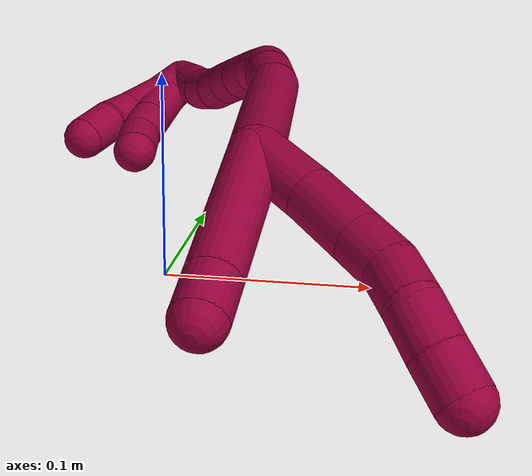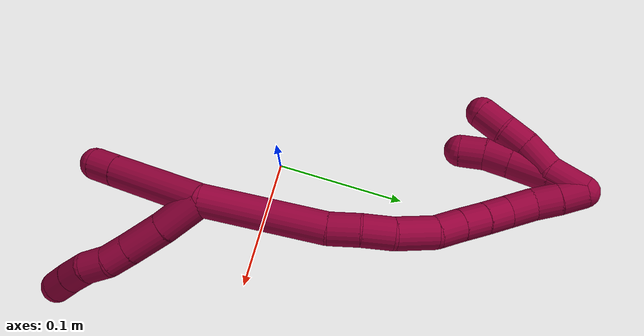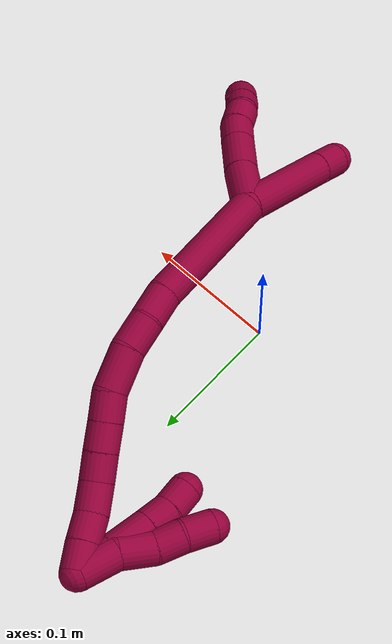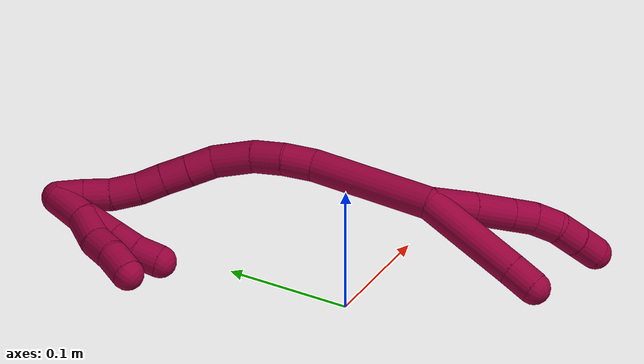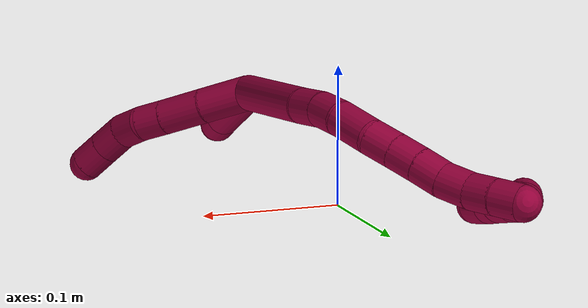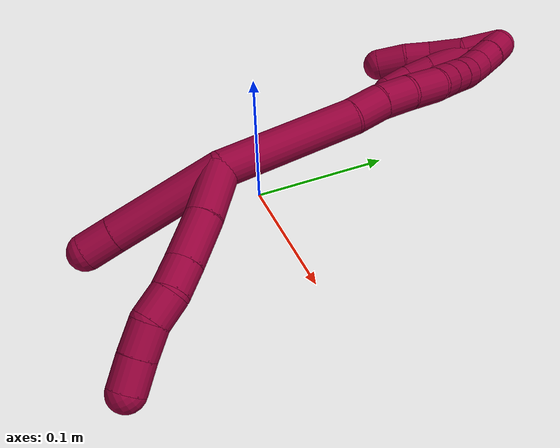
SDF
<sdf version="1.7">
 <world name="default">
  <model name="8">
   <static>0</static>
   <link name="8">
    <collision name="collision-cylinder-e_1_2_8">
     <pose>-0.002387 -0.014334 0.01034 0.945845 -0.134226 -0.068752</pose>
     <geometry><cylinder><radius>0.0125</radius><length>0.035669</length></cylinder></geometry>
     <surface>
      <friction><ode><mu>1.16</mu><mu2>1.16</mu2><slip1>0</slip1><slip2>0</slip2></ode></friction>
      <contact><ode><kp>1e+06</kp><kd>1</kd><max_vel>0</max_vel><min_depth>0.001</min_depth></ode></contact>
     </surface>
    </collision>
    <visual name="visual-cylinder-e_1_2_8">
     <pose>-0.002387 -0.014334 0.01034 0.945845 -0.134226 -0.068752</pose>
     <geometry><cylinder><radius>0.0125</radius><length>0.035669</length></cylinder></geometry>
     <material><ambient>0.584314 0 0.227451 1</ambient></material>
    </visual>
    <collision name="collision-cylinder-e_2_8_9">
     <pose>-0.006737 -0.041023 0.031063 0.872011 -0.121072 -0.056462</pose>
     <geometry><cylinder><radius>0.0125</radius><length>0.032515</length></cylinder></geometry>
     <surface>
      <friction><ode><mu>1.16</mu><mu2>1.16</mu2><slip1>0</slip1><slip2>0</slip2></ode></friction>
      <contact><ode><kp>1e+06</kp><kd>1</kd><max_vel>0</max_vel><min_depth>0.001</min_depth></ode></contact>
     </surface>
    </collision>
    <visual name="visual-cylinder-e_2_8_9">
     <pose>-0.006737 -0.041023 0.031063 0.872011 -0.121072 -0.056462</pose>
     <geometry><cylinder><radius>0.0125</radius><length>0.032515</length></cylinder></geometry>
     <material><ambient>0.584314 0 0.227451 1</ambient></material>
    </visual>
    <collision name="collision-cylinder-e_3_9_10">
     <pose>-0.009726 -0.060884 0.047996 0.853093 -0.102552 -0.046637</pose>
     <geometry><cylinder><radius>0.0125</radius><length>0.020029</length></cylinder></geometry>
     <surface>
      <friction><ode><mu>1.16</mu><mu2>1.16</mu2><slip1>0</slip1><slip2>0</slip2></ode></friction>
      <contact><ode><kp>1e+06</kp><kd>1</kd><max_vel>0</max_vel><min_depth>0.001</min_depth></ode></contact>
     </surface>
    </collision>
    <visual name="visual-cylinder-e_3_9_10">
     <pose>-0.009726 -0.060884 0.047996 0.853093 -0.102552 -0.046637</pose>
     <geometry><cylinder><radius>0.0125</radius><length>0.020029</length></cylinder></geometry>
     <material><ambient>0.584314 0 0.227451 1</ambient></material>
    </visual>
    <collision name="collision-cylinder-e_4_10_11">
     <pose>-0.012126 -0.073996 0.062812 0.596203 -0.136803 -0.042093</pose>
     <geometry><cylinder><radius>0.0125</radius><length>0.020163</length></cylinder></geometry>
     <surface>
      <friction><ode><mu>1.16</mu><mu2>1.16</mu2><slip1>0</slip1><slip2>0</slip2></ode></friction>
      <contact><ode><kp>1e+06</kp><kd>1</kd><max_vel>0</max_vel><min_depth>0.001</min_depth></ode></contact>
     </surface>
    </collision>
    <visual name="visual-cylinder-e_4_10_11">
     <pose>-0.012126 -0.073996 0.062812 0.596203 -0.136803 -0.042093</pose>
     <geometry><cylinder><radius>0.0125</radius><length>0.020163</length></cylinder></geometry>
     <material><ambient>0.584314 0 0.227451 1</ambient></material>
    </visual>
    <collision name="collision-cylinder-e_5_11_12">
     <pose>-0.017997 -0.085467 0.078405 0.674683 -0.446792 -0.159036</pose>
     <geometry><cylinder><radius>0.0125</radius><length>0.020814</length></cylinder></geometry>
     <surface>
      <friction><ode><mu>1.16</mu><mu2>1.16</mu2><slip1>0</slip1><slip2>0</slip2></ode></friction>
      <contact><ode><kp>1e+06</kp><kd>1</kd><max_vel>0</max_vel><min_depth>0.001</min_depth></ode></contact>
     </surface>
    </collision>
    <visual name="visual-cylinder-e_5_11_12">
     <pose>-0.017997 -0.085467 0.078405 0.674683 -0.446792 -0.159036</pose>
     <geometry><cylinder><radius>0.0125</radius><length>0.020814</length></cylinder></geometry>
     <material><ambient>0.584314 0 0.227451 1</ambient></material>
    </visual>
    <collision name="collision-cylinder-e_6_12_6">
     <pose>-0.027278 -0.097438 0.092667 0.722289 -0.477772 -0.183456</pose>
     <geometry><cylinder><radius>0.0125</radius><length>0.020809</length></cylinder></geometry>
     <surface>
      <friction><ode><mu>1.16</mu><mu2>1.16</mu2><slip1>0</slip1><slip2>0</slip2></ode></friction>
      <contact><ode><kp>1e+06</kp><kd>1</kd><max_vel>0</max_vel><min_depth>0.001</min_depth></ode></contact>
     </surface>
    </collision>
    <visual name="visual-cylinder-e_6_12_6">
     <pose>-0.027278 -0.097438 0.092667 0.722289 -0.477772 -0.183456</pose>
     <geometry><cylinder><radius>0.0125</radius><length>0.020809</length></cylinder></geometry>
     <material><ambient>0.584314 0 0.227451 1</ambient></material>
    </visual>
    <collision name="collision-cylinder-e_1_2_13">
     <pose>-0.003167 -0.001842 0.03906 0.047122 -0.080812 -0.001905</pose>
     <geometry><cylinder><radius>0.0125</radius><length>0.078462</length></cylinder></geometry>
     <surface>
      <friction><ode><mu>1.16</mu><mu2>1.16</mu2><slip1>0</slip1><slip2>0</slip2></ode></friction>
      <contact><ode><kp>1e+06</kp><kd>1</kd><max_vel>0</max_vel><min_depth>0.001</min_depth></ode></contact>
     </surface>
    </collision>
    <visual name="visual-cylinder-e_1_2_13">
     <pose>-0.003167 -0.001842 0.03906 0.047122 -0.080812 -0.001905</pose>
     <geometry><cylinder><radius>0.0125</radius><length>0.078462</length></cylinder></geometry>
     <material><ambient>0.584314 0 0.227451 1</ambient></material>
    </visual>
    <collision name="collision-cylinder-e_2_13_5">
     <pose>-0.007388 -0.004119 0.088828 0.040629 -0.098083 -0.001994</pose>
     <geometry><cylinder><radius>0.0125</radius><length>0.021538</length></cylinder></geometry>
     <surface>
      <friction><ode><mu>1.16</mu><mu2>1.16</mu2><slip1>0</slip1><slip2>0</slip2></ode></friction>
      <contact><ode><kp>1e+06</kp><kd>1</kd><max_vel>0</max_vel><min_depth>0.001</min_depth></ode></contact>
     </surface>
    </collision>
    <visual name="visual-cylinder-e_2_13_5">
     <pose>-0.007388 -0.004119 0.088828 0.040629 -0.098083 -0.001994</pose>
     <geometry><cylinder><radius>0.0125</radius><length>0.021538</length></cylinder></geometry>
     <material><ambient>0.584314 0 0.227451 1</ambient></material>
    </visual>
    <collision name="collision-cylinder-e_1_2_14">
     <pose>-0.011967 0.009032 -0.045429 -2.94535 -0.252826 1.82353</pose>
     <geometry><cylinder><radius>0.0125</radius><length>0.095678</length></cylinder></geometry>
     <surface>
      <friction><ode><mu>1.16</mu><mu2>1.16</mu2><slip1>0</slip1><slip2>0</slip2></ode></friction>
      <contact><ode><kp>1e+06</kp><kd>1</kd><max_vel>0</max_vel><min_depth>0.001</min_depth></ode></contact>
     </surface>
    </collision>
    <visual name="visual-cylinder-e_1_2_14">
     <pose>-0.011967 0.009032 -0.045429 -2.94535 -0.252826 1.82353</pose>
     <geometry><cylinder><radius>0.0125</radius><length>0.095678</length></cylinder></geometry>
     <material><ambient>0.584314 0 0.227451 1</ambient></material>
    </visual>
    <collision name="collision-cylinder-e_2_14_15">
     <pose>-0.027013 0.022307 -0.101534 -2.76316 -0.261949 1.20506</pose>
     <geometry><cylinder><radius>0.0125</radius><length>0.023787</length></cylinder></geometry>
     <surface>
      <friction><ode><mu>1.16</mu><mu2>1.16</mu2><slip1>0</slip1><slip2>0</slip2></ode></friction>
      <contact><ode><kp>1e+06</kp><kd>1</kd><max_vel>0</max_vel><min_depth>0.001</min_depth></ode></contact>
     </surface>
    </collision>
    <visual name="visual-cylinder-e_2_14_15">
     <pose>-0.027013 0.022307 -0.101534 -2.76316 -0.261949 1.20506</pose>
     <geometry><cylinder><radius>0.0125</radius><length>0.023787</length></cylinder></geometry>
     <material><ambient>0.584314 0 0.227451 1</ambient></material>
    </visual>
    <collision name="collision-cylinder-e_3_15_16">
     <pose>-0.034903 0.030338 -0.122666 -2.79417 -0.40823 1.73522</pose>
     <geometry><cylinder><radius>0.0125</radius><length>0.024235</length></cylinder></geometry>
     <surface>
      <friction><ode><mu>1.16</mu><mu2>1.16</mu2><slip1>0</slip1><slip2>0</slip2></ode></friction>
      <contact><ode><kp>1e+06</kp><kd>1</kd><max_vel>0</max_vel><min_depth>0.001</min_depth></ode></contact>
     </surface>
    </collision>
    <visual name="visual-cylinder-e_3_15_16">
     <pose>-0.034903 0.030338 -0.122666 -2.79417 -0.40823 1.73522</pose>
     <geometry><cylinder><radius>0.0125</radius><length>0.024235</length></cylinder></geometry>
     <material><ambient>0.584314 0 0.227451 1</ambient></material>
    </visual>
    <collision name="collision-cylinder-e_4_16_17">
     <pose>-0.047895 0.041074 -0.144721 -2.60179 -0.544145 1.57921</pose>
     <geometry><cylinder><radius>0.0125</radius><length>0.031606</length></cylinder></geometry>
     <surface>
      <friction><ode><mu>1.16</mu><mu2>1.16</mu2><slip1>0</slip1><slip2>0</slip2></ode></friction>
      <contact><ode><kp>1e+06</kp><kd>1</kd><max_vel>0</max_vel><min_depth>0.001</min_depth></ode></contact>
     </surface>
    </collision>
    <visual name="visual-cylinder-e_4_16_17">
     <pose>-0.047895 0.041074 -0.144721 -2.60179 -0.544145 1.57921</pose>
     <geometry><cylinder><radius>0.0125</radius><length>0.031606</length></cylinder></geometry>
     <material><ambient>0.584314 0 0.227451 1</ambient></material>
    </visual>
    <collision name="collision-cylinder-e_5_17_18">
     <pose>-0.061867 0.054518 -0.162012 -2.29052 -0.590716 1.18242</pose>
     <geometry><cylinder><radius>0.0125</radius><length>0.020798</length></cylinder></geometry>
     <surface>
      <friction><ode><mu>1.16</mu><mu2>1.16</mu2><slip1>0</slip1><slip2>0</slip2></ode></friction>
      <contact><ode><kp>1e+06</kp><kd>1</kd><max_vel>0</max_vel><min_depth>0.001</min_depth></ode></contact>
     </surface>
    </collision>
    <visual name="visual-cylinder-e_5_17_18">
     <pose>-0.061867 0.054518 -0.162012 -2.29052 -0.590716 1.18242</pose>
     <geometry><cylinder><radius>0.0125</radius><length>0.020798</length></cylinder></geometry>
     <material><ambient>0.584314 0 0.227451 1</ambient></material>
    </visual>
    <collision name="collision-cylinder-e_6_18_19">
     <pose>-0.073419 0.067197 -0.173449 -2.31926 -0.598792 1.23206</pose>
     <geometry><cylinder><radius>0.0125</radius><length>0.020437</length></cylinder></geometry>
     <surface>
      <friction><ode><mu>1.16</mu><mu2>1.16</mu2><slip1>0</slip1><slip2>0</slip2></ode></friction>
      <contact><ode><kp>1e+06</kp><kd>1</kd><max_vel>0</max_vel><min_depth>0.001</min_depth></ode></contact>
     </surface>
    </collision>
    <visual name="visual-cylinder-e_6_18_19">
     <pose>-0.073419 0.067197 -0.173449 -2.31926 -0.598792 1.23206</pose>
     <geometry><cylinder><radius>0.0125</radius><length>0.020437</length></cylinder></geometry>
     <material><ambient>0.584314 0 0.227451 1</ambient></material>
    </visual>
    <collision name="collision-cylinder-e_7_19_20">
     <pose>-0.085153 0.079646 -0.184593 -2.28228 -0.625585 1.22924</pose>
     <geometry><cylinder><radius>0.0125</radius><length>0.020406</length></cylinder></geometry>
     <surface>
      <friction><ode><mu>1.16</mu><mu2>1.16</mu2><slip1>0</slip1><slip2>0</slip2></ode></friction>
      <contact><ode><kp>1e+06</kp><kd>1</kd><max_vel>0</max_vel><min_depth>0.001</min_depth></ode></contact>
     </surface>
    </collision>
    <visual name="visual-cylinder-e_7_19_20">
     <pose>-0.085153 0.079646 -0.184593 -2.28228 -0.625585 1.22924</pose>
     <geometry><cylinder><radius>0.0125</radius><length>0.020406</length></cylinder></geometry>
     <material><ambient>0.584314 0 0.227451 1</ambient></material>
    </visual>
    <collision name="collision-cylinder-e_8_20_21">
     <pose>-0.096058 0.093063 -0.196938 -2.34142 -0.459315 1.01</pose>
     <geometry><cylinder><radius>0.0125</radius><length>0.022243</length></cylinder></geometry>
     <surface>
      <friction><ode><mu>1.16</mu><mu2>1.16</mu2><slip1>0</slip1><slip2>0</slip2></ode></friction>
      <contact><ode><kp>1e+06</kp><kd>1</kd><max_vel>0</max_vel><min_depth>0.001</min_depth></ode></contact>
     </surface>
    </collision>
    <visual name="visual-cylinder-e_8_20_21">
     <pose>-0.096058 0.093063 -0.196938 -2.34142 -0.459315 1.01</pose>
     <geometry><cylinder><radius>0.0125</radius><length>0.022243</length></cylinder></geometry>
     <material><ambient>0.584314 0 0.227451 1</ambient></material>
    </visual>
    <collision name="collision-cylinder-e_9_21_22">
     <pose>-0.104141 0.106253 -0.211567 -2.47568 -0.311976 0.853589</pose>
     <geometry><cylinder><radius>0.0125</radius><length>0.020536</length></cylinder></geometry>
     <surface>
      <friction><ode><mu>1.16</mu><mu2>1.16</mu2><slip1>0</slip1><slip2>0</slip2></ode></friction>
      <contact><ode><kp>1e+06</kp><kd>1</kd><max_vel>0</max_vel><min_depth>0.001</min_depth></ode></contact>
     </surface>
    </collision>
    <visual name="visual-cylinder-e_9_21_22">
     <pose>-0.104141 0.106253 -0.211567 -2.47568 -0.311976 0.853589</pose>
     <geometry><cylinder><radius>0.0125</radius><length>0.020536</length></cylinder></geometry>
     <material><ambient>0.584314 0 0.227451 1</ambient></material>
    </visual>
    <collision name="collision-cylinder-e_10_22_1">
     <pose>-0.110526 0.118788 -0.226328 -2.39874 -0.324722 0.796172</pose>
     <geometry><cylinder><radius>0.0125</radius><length>0.020274</length></cylinder></geometry>
     <surface>
      <friction><ode><mu>1.16</mu><mu2>1.16</mu2><slip1>0</slip1><slip2>0</slip2></ode></friction>
      <contact><ode><kp>1e+06</kp><kd>1</kd><max_vel>0</max_vel><min_depth>0.001</min_depth></ode></contact>
     </surface>
    </collision>
    <visual name="visual-cylinder-e_10_22_1">
     <pose>-0.110526 0.118788 -0.226328 -2.39874 -0.324722 0.796172</pose>
     <geometry><cylinder><radius>0.0125</radius><length>0.020274</length></cylinder></geometry>
     <material><ambient>0.584314 0 0.227451 1</ambient></material>
    </visual>
    <collision name="collision-cylinder-e_1_1_23">
     <pose>-0.111168 0.127559 -0.218761 -0.153951 0.1732 -0.013392</pose>
     <geometry><cylinder><radius>0.0125</radius><length>0.030085</length></cylinder></geometry>
     <surface>
      <friction><ode><mu>1.16</mu><mu2>1.16</mu2><slip1>0</slip1><slip2>0</slip2></ode></friction>
      <contact><ode><kp>1e+06</kp><kd>1</kd><max_vel>0</max_vel><min_depth>0.001</min_depth></ode></contact>
     </surface>
    </collision>
    <visual name="visual-cylinder-e_1_1_23">
     <pose>-0.111168 0.127559 -0.218761 -0.153951 0.1732 -0.013392</pose>
     <geometry><cylinder><radius>0.0125</radius><length>0.030085</length></cylinder></geometry>
     <material><ambient>0.584314 0 0.227451 1</ambient></material>
    </visual>
    <collision name="collision-cylinder-e_2_23_24">
     <pose>-0.107779 0.135923 -0.192253 -0.474313 0.059685 -0.01443</pose>
     <geometry><cylinder><radius>0.0125</radius><length>0.026724</length></cylinder></geometry>
     <surface>
      <friction><ode><mu>1.16</mu><mu2>1.16</mu2><slip1>0</slip1><slip2>0</slip2></ode></friction>
      <contact><ode><kp>1e+06</kp><kd>1</kd><max_vel>0</max_vel><min_depth>0.001</min_depth></ode></contact>
     </surface>
    </collision>
    <visual name="visual-cylinder-e_2_23_24">
     <pose>-0.107779 0.135923 -0.192253 -0.474313 0.059685 -0.01443</pose>
     <geometry><cylinder><radius>0.0125</radius><length>0.026724</length></cylinder></geometry>
     <material><ambient>0.584314 0 0.227451 1</ambient></material>
    </visual>
    <collision name="collision-cylinder-e_3_24_25">
     <pose>-0.104355 0.144759 -0.170702 -0.276111 0.255284 -0.035659</pose>
     <geometry><cylinder><radius>0.0125</radius><length>0.020808</length></cylinder></geometry>
     <surface>
      <friction><ode><mu>1.16</mu><mu2>1.16</mu2><slip1>0</slip1><slip2>0</slip2></ode></friction>
      <contact><ode><kp>1e+06</kp><kd>1</kd><max_vel>0</max_vel><min_depth>0.001</min_depth></ode></contact>
     </surface>
    </collision>
    <visual name="visual-cylinder-e_3_24_25">
     <pose>-0.104355 0.144759 -0.170702 -0.276111 0.255284 -0.035659</pose>
     <geometry><cylinder><radius>0.0125</radius><length>0.020808</length></cylinder></geometry>
     <material><ambient>0.584314 0 0.227451 1</ambient></material>
    </visual>
    <collision name="collision-cylinder-e_4_25_4">
     <pose>-0.100868 0.150799 -0.150356 -0.299837 0.076856 -0.011615</pose>
     <geometry><cylinder><radius>0.0125</radius><length>0.022383</length></cylinder></geometry>
     <surface>
      <friction><ode><mu>1.16</mu><mu2>1.16</mu2><slip1>0</slip1><slip2>0</slip2></ode></friction>
      <contact><ode><kp>1e+06</kp><kd>1</kd><max_vel>0</max_vel><min_depth>0.001</min_depth></ode></contact>
     </surface>
    </collision>
    <visual name="visual-cylinder-e_4_25_4">
     <pose>-0.100868 0.150799 -0.150356 -0.299837 0.076856 -0.011615</pose>
     <geometry><cylinder><radius>0.0125</radius><length>0.022383</length></cylinder></geometry>
     <material><ambient>0.584314 0 0.227451 1</ambient></material>
    </visual>
    <collision name="collision-cylinder-e_1_1_26">
     <pose>-0.112124 0.126104 -0.219589 -0.059083 0.117706 -0.003482</pose>
     <geometry><cylinder><radius>0.0125</radius><length>0.027871</length></cylinder></geometry>
     <surface>
      <friction><ode><mu>1.16</mu><mu2>1.16</mu2><slip1>0</slip1><slip2>0</slip2></ode></friction>
      <contact><ode><kp>1e+06</kp><kd>1</kd><max_vel>0</max_vel><min_depth>0.001</min_depth></ode></contact>
     </surface>
    </collision>
    <visual name="visual-cylinder-e_1_1_26">
     <pose>-0.112124 0.126104 -0.219589 -0.059083 0.117706 -0.003482</pose>
     <geometry><cylinder><radius>0.0125</radius><length>0.027871</length></cylinder></geometry>
     <material><ambient>0.584314 0 0.227451 1</ambient></material>
    </visual>
    <collision name="collision-cylinder-e_2_26_27">
     <pose>-0.108954 0.126641 -0.190087 0.017834 0.097431 0.000869</pose>
     <geometry><cylinder><radius>0.0125</radius><length>0.031527</length></cylinder></geometry>
     <surface>
      <friction><ode><mu>1.16</mu><mu2>1.16</mu2><slip1>0</slip1><slip2>0</slip2></ode></friction>
      <contact><ode><kp>1e+06</kp><kd>1</kd><max_vel>0</max_vel><min_depth>0.001</min_depth></ode></contact>
     </surface>
    </collision>
    <visual name="visual-cylinder-e_2_26_27">
     <pose>-0.108954 0.126641 -0.190087 0.017834 0.097431 0.000869</pose>
     <geometry><cylinder><radius>0.0125</radius><length>0.031527</length></cylinder></geometry>
     <material><ambient>0.584314 0 0.227451 1</ambient></material>
    </visual>
    <collision name="collision-cylinder-e_3_27_28">
     <pose>-0.106539 0.125966 -0.164174 0.038659 0.085936 0.001662</pose>
     <geometry><cylinder><radius>0.0125</radius><length>0.020546</length></cylinder></geometry>
     <surface>
      <friction><ode><mu>1.16</mu><mu2>1.16</mu2><slip1>0</slip1><slip2>0</slip2></ode></friction>
      <contact><ode><kp>1e+06</kp><kd>1</kd><max_vel>0</max_vel><min_depth>0.001</min_depth></ode></contact>
     </surface>
    </collision>
    <visual name="visual-cylinder-e_3_27_28">
     <pose>-0.106539 0.125966 -0.164174 0.038659 0.085936 0.001662</pose>
     <geometry><cylinder><radius>0.0125</radius><length>0.020546</length></cylinder></geometry>
     <material><ambient>0.584314 0 0.227451 1</ambient></material>
    </visual>
    <collision name="collision-cylinder-e_4_28_3">
     <pose>-0.104355 0.123164 -0.144299 0.244467 0.130245 0.016022</pose>
     <geometry><cylinder><radius>0.0125</radius><length>0.020056</length></cylinder></geometry>
     <surface>
      <friction><ode><mu>1.16</mu><mu2>1.16</mu2><slip1>0</slip1><slip2>0</slip2></ode></friction>
      <contact><ode><kp>1e+06</kp><kd>1</kd><max_vel>0</max_vel><min_depth>0.001</min_depth></ode></contact>
     </surface>
    </collision>
    <visual name="visual-cylinder-e_4_28_3">
     <pose>-0.104355 0.123164 -0.144299 0.244467 0.130245 0.016022</pose>
     <geometry><cylinder><radius>0.0125</radius><length>0.020056</length></cylinder></geometry>
     <material><ambient>0.584314 0 0.227451 1</ambient></material>
    </visual>
    <collision name="collision-sphere-3">
     <pose>-0.103052 0.120757 -0.134652 0 -0 0</pose>
     <geometry><sphere><radius>0.0125</radius></sphere></geometry>
     <surface>
      <friction><ode><mu>1.16</mu><mu2>1.16</mu2><slip1>0</slip1><slip2>0</slip2></ode></friction>
      <contact><ode><kp>1e+06</kp><kd>1</kd><max_vel>0</max_vel><min_depth>0.001</min_depth></ode></contact>
     </surface>
    </collision>
    <visual name="visual-sphere-3">
     <pose>-0.103052 0.120757 -0.134652 0 -0 0</pose>
     <geometry><sphere><radius>0.0125</radius></sphere></geometry>
     <material><ambient>0.584314 0 0.227451 1</ambient></material>
    </visual>
    <collision name="collision-sphere-28">
     <pose>-0.105657 0.12557 -0.153946 0 -0 0</pose>
     <geometry><sphere><radius>0.0125</radius></sphere></geometry>
     <surface>
      <friction><ode><mu>1.16</mu><mu2>1.16</mu2><slip1>0</slip1><slip2>0</slip2></ode></friction>
      <contact><ode><kp>1e+06</kp><kd>1</kd><max_vel>0</max_vel><min_depth>0.001</min_depth></ode></contact>
     </surface>
    </collision>
    <visual name="visual-sphere-28">
     <pose>-0.105657 0.12557 -0.153946 0 -0 0</pose>
     <geometry><sphere><radius>0.0125</radius></sphere></geometry>
     <material><ambient>0.584314 0 0.227451 1</ambient></material>
    </visual>
    <collision name="collision-sphere-27">
     <pose>-0.107421 0.126361 -0.174401 0 -0 0</pose>
     <geometry><sphere><radius>0.0125</radius></sphere></geometry>
     <surface>
      <friction><ode><mu>1.16</mu><mu2>1.16</mu2><slip1>0</slip1><slip2>0</slip2></ode></friction>
      <contact><ode><kp>1e+06</kp><kd>1</kd><max_vel>0</max_vel><min_depth>0.001</min_depth></ode></contact>
     </surface>
    </collision>
    <visual name="visual-sphere-27">
     <pose>-0.107421 0.126361 -0.174401 0 -0 0</pose>
     <geometry><sphere><radius>0.0125</radius></sphere></geometry>
     <material><ambient>0.584314 0 0.227451 1</ambient></material>
    </visual>
    <collision name="collision-sphere-26">
     <pose>-0.110488 0.126921 -0.205774 0 -0 0</pose>
     <geometry><sphere><radius>0.0125</radius></sphere></geometry>
     <surface>
      <friction><ode><mu>1.16</mu><mu2>1.16</mu2><slip1>0</slip1><slip2>0</slip2></ode></friction>
      <contact><ode><kp>1e+06</kp><kd>1</kd><max_vel>0</max_vel><min_depth>0.001</min_depth></ode></contact>
     </surface>
    </collision>
    <visual name="visual-sphere-26">
     <pose>-0.110488 0.126921 -0.205774 0 -0 0</pose>
     <geometry><sphere><radius>0.0125</radius></sphere></geometry>
     <material><ambient>0.584314 0 0.227451 1</ambient></material>
    </visual>
    <collision name="collision-sphere-4">
     <pose>-0.100009 0.154095 -0.139695 0 -0 0</pose>
     <geometry><sphere><radius>0.0125</radius></sphere></geometry>
     <surface>
      <friction><ode><mu>1.16</mu><mu2>1.16</mu2><slip1>0</slip1><slip2>0</slip2></ode></friction>
      <contact><ode><kp>1e+06</kp><kd>1</kd><max_vel>0</max_vel><min_depth>0.001</min_depth></ode></contact>
     </surface>
    </collision>
    <visual name="visual-sphere-4">
     <pose>-0.100009 0.154095 -0.139695 0 -0 0</pose>
     <geometry><sphere><radius>0.0125</radius></sphere></geometry>
     <material><ambient>0.584314 0 0.227451 1</ambient></material>
    </visual>
    <collision name="collision-sphere-25">
     <pose>-0.101727 0.147503 -0.161017 0 -0 0</pose>
     <geometry><sphere><radius>0.0125</radius></sphere></geometry>
     <surface>
      <friction><ode><mu>1.16</mu><mu2>1.16</mu2><slip1>0</slip1><slip2>0</slip2></ode></friction>
      <contact><ode><kp>1e+06</kp><kd>1</kd><max_vel>0</max_vel><min_depth>0.001</min_depth></ode></contact>
     </surface>
    </collision>
    <visual name="visual-sphere-25">
     <pose>-0.101727 0.147503 -0.161017 0 -0 0</pose>
     <geometry><sphere><radius>0.0125</radius></sphere></geometry>
     <material><ambient>0.584314 0 0.227451 1</ambient></material>
    </visual>
    <collision name="collision-sphere-24">
     <pose>-0.106982 0.142015 -0.180388 0 -0 0</pose>
     <geometry><sphere><radius>0.0125</radius></sphere></geometry>
     <surface>
      <friction><ode><mu>1.16</mu><mu2>1.16</mu2><slip1>0</slip1><slip2>0</slip2></ode></friction>
      <contact><ode><kp>1e+06</kp><kd>1</kd><max_vel>0</max_vel><min_depth>0.001</min_depth></ode></contact>
     </surface>
    </collision>
    <visual name="visual-sphere-24">
     <pose>-0.106982 0.142015 -0.180388 0 -0 0</pose>
     <geometry><sphere><radius>0.0125</radius></sphere></geometry>
     <material><ambient>0.584314 0 0.227451 1</ambient></material>
    </visual>
    <collision name="collision-sphere-23">
     <pose>-0.108576 0.129831 -0.204119 0 -0 0</pose>
     <geometry><sphere><radius>0.0125</radius></sphere></geometry>
     <surface>
      <friction><ode><mu>1.16</mu><mu2>1.16</mu2><slip1>0</slip1><slip2>0</slip2></ode></friction>
      <contact><ode><kp>1e+06</kp><kd>1</kd><max_vel>0</max_vel><min_depth>0.001</min_depth></ode></contact>
     </surface>
    </collision>
    <visual name="visual-sphere-23">
     <pose>-0.108576 0.129831 -0.204119 0 -0 0</pose>
     <geometry><sphere><radius>0.0125</radius></sphere></geometry>
     <material><ambient>0.584314 0 0.227451 1</ambient></material>
    </visual>
    <collision name="collision-sphere-1">
     <pose>-0.113761 0.125286 -0.233404 0 -0 0</pose>
     <geometry><sphere><radius>0.0125</radius></sphere></geometry>
     <surface>
      <friction><ode><mu>1.16</mu><mu2>1.16</mu2><slip1>0</slip1><slip2>0</slip2></ode></friction>
      <contact><ode><kp>1e+06</kp><kd>1</kd><max_vel>0</max_vel><min_depth>0.001</min_depth></ode></contact>
     </surface>
    </collision>
    <visual name="visual-sphere-1">
     <pose>-0.113761 0.125286 -0.233404 0 -0 0</pose>
     <geometry><sphere><radius>0.0125</radius></sphere></geometry>
     <material><ambient>0.584314 0 0.227451 1</ambient></material>
    </visual>
    <collision name="collision-sphere-22">
     <pose>-0.107292 0.11229 -0.219251 0 -0 0</pose>
     <geometry><sphere><radius>0.0125</radius></sphere></geometry>
     <surface>
      <friction><ode><mu>1.16</mu><mu2>1.16</mu2><slip1>0</slip1><slip2>0</slip2></ode></friction>
      <contact><ode><kp>1e+06</kp><kd>1</kd><max_vel>0</max_vel><min_depth>0.001</min_depth></ode></contact>
     </surface>
    </collision>
    <visual name="visual-sphere-22">
     <pose>-0.107292 0.11229 -0.219251 0 -0 0</pose>
     <geometry><sphere><radius>0.0125</radius></sphere></geometry>
     <material><ambient>0.584314 0 0.227451 1</ambient></material>
    </visual>
    <collision name="collision-sphere-21">
     <pose>-0.100989 0.100216 -0.203882 0 -0 0</pose>
     <geometry><sphere><radius>0.0125</radius></sphere></geometry>
     <surface>
      <friction><ode><mu>1.16</mu><mu2>1.16</mu2><slip1>0</slip1><slip2>0</slip2></ode></friction>
      <contact><ode><kp>1e+06</kp><kd>1</kd><max_vel>0</max_vel><min_depth>0.001</min_depth></ode></contact>
     </surface>
    </collision>
    <visual name="visual-sphere-21">
     <pose>-0.100989 0.100216 -0.203882 0 -0 0</pose>
     <geometry><sphere><radius>0.0125</radius></sphere></geometry>
     <material><ambient>0.584314 0 0.227451 1</ambient></material>
    </visual>
    <collision name="collision-sphere-12">
     <pose>-0.022494 -0.09133 0.085734 0 -0 0</pose>
     <geometry><sphere><radius>0.0125</radius></sphere></geometry>
     <surface>
      <friction><ode><mu>1.16</mu><mu2>1.16</mu2><slip1>0</slip1><slip2>0</slip2></ode></friction>
      <contact><ode><kp>1e+06</kp><kd>1</kd><max_vel>0</max_vel><min_depth>0.001</min_depth></ode></contact>
     </surface>
    </collision>
    <visual name="visual-sphere-12">
     <pose>-0.022494 -0.09133 0.085734 0 -0 0</pose>
     <geometry><sphere><radius>0.0125</radius></sphere></geometry>
     <material><ambient>0.584314 0 0.227451 1</ambient></material>
    </visual>
    <collision name="collision-sphere-11">
     <pose>-0.013501 -0.079604 0.071076 0 -0 0</pose>
     <geometry><sphere><radius>0.0125</radius></sphere></geometry>
     <surface>
      <friction><ode><mu>1.16</mu><mu2>1.16</mu2><slip1>0</slip1><slip2>0</slip2></ode></friction>
      <contact><ode><kp>1e+06</kp><kd>1</kd><max_vel>0</max_vel><min_depth>0.001</min_depth></ode></contact>
     </surface>
    </collision>
    <visual name="visual-sphere-11">
     <pose>-0.013501 -0.079604 0.071076 0 -0 0</pose>
     <geometry><sphere><radius>0.0125</radius></sphere></geometry>
     <material><ambient>0.584314 0 0.227451 1</ambient></material>
    </visual>
    <collision name="collision-sphere-10">
     <pose>-0.010751 -0.068388 0.054547 0 -0 0</pose>
     <geometry><sphere><radius>0.0125</radius></sphere></geometry>
     <surface>
      <friction><ode><mu>1.16</mu><mu2>1.16</mu2><slip1>0</slip1><slip2>0</slip2></ode></friction>
      <contact><ode><kp>1e+06</kp><kd>1</kd><max_vel>0</max_vel><min_depth>0.001</min_depth></ode></contact>
     </surface>
    </collision>
    <visual name="visual-sphere-10">
     <pose>-0.010751 -0.068388 0.054547 0 -0 0</pose>
     <geometry><sphere><radius>0.0125</radius></sphere></geometry>
     <material><ambient>0.584314 0 0.227451 1</ambient></material>
    </visual>
    <collision name="collision-sphere-9">
     <pose>-0.0087 -0.053379 0.041444 0 -0 0</pose>
     <geometry><sphere><radius>0.0125</radius></sphere></geometry>
     <surface>
      <friction><ode><mu>1.16</mu><mu2>1.16</mu2><slip1>0</slip1><slip2>0</slip2></ode></friction>
      <contact><ode><kp>1e+06</kp><kd>1</kd><max_vel>0</max_vel><min_depth>0.001</min_depth></ode></contact>
     </surface>
    </collision>
    <visual name="visual-sphere-9">
     <pose>-0.0087 -0.053379 0.041444 0 -0 0</pose>
     <geometry><sphere><radius>0.0125</radius></sphere></geometry>
     <material><ambient>0.584314 0 0.227451 1</ambient></material>
    </visual>
    <collision name="collision-sphere-2">
     <geometry><sphere><radius>0.0125</radius></sphere></geometry>
     <surface>
      <friction><ode><mu>1.16</mu><mu2>1.16</mu2><slip1>0</slip1><slip2>0</slip2></ode></friction>
      <contact><ode><kp>1e+06</kp><kd>1</kd><max_vel>0</max_vel><min_depth>0.001</min_depth></ode></contact>
     </surface>
    </collision>
    <visual name="visual-sphere-2">
     <geometry><sphere><radius>0.0125</radius></sphere></geometry>
     <material><ambient>0.584314 0 0.227451 1</ambient></material>
    </visual>
    <collision name="collision-sphere-19">
     <pose>-0.079178 0.073382 -0.179193 0 -0 0</pose>
     <geometry><sphere><radius>0.0125</radius></sphere></geometry>
     <surface>
      <friction><ode><mu>1.16</mu><mu2>1.16</mu2><slip1>0</slip1><slip2>0</slip2></ode></friction>
      <contact><ode><kp>1e+06</kp><kd>1</kd><max_vel>0</max_vel><min_depth>0.001</min_depth></ode></contact>
     </surface>
    </collision>
    <visual name="visual-sphere-19">
     <pose>-0.079178 0.073382 -0.179193 0 -0 0</pose>
     <geometry><sphere><radius>0.0125</radius></sphere></geometry>
     <material><ambient>0.584314 0 0.227451 1</ambient></material>
    </visual>
    <collision name="collision-sphere-8">
     <pose>-0.004773 -0.028667 0.020681 0 -0 0</pose>
     <geometry><sphere><radius>0.0125</radius></sphere></geometry>
     <surface>
      <friction><ode><mu>1.16</mu><mu2>1.16</mu2><slip1>0</slip1><slip2>0</slip2></ode></friction>
      <contact><ode><kp>1e+06</kp><kd>1</kd><max_vel>0</max_vel><min_depth>0.001</min_depth></ode></contact>
     </surface>
    </collision>
    <visual name="visual-sphere-8">
     <pose>-0.004773 -0.028667 0.020681 0 -0 0</pose>
     <geometry><sphere><radius>0.0125</radius></sphere></geometry>
     <material><ambient>0.584314 0 0.227451 1</ambient></material>
    </visual>
    <collision name="collision-sphere-6">
     <pose>-0.032062 -0.103546 0.099599 0 -0 0</pose>
     <geometry><sphere><radius>0.0125</radius></sphere></geometry>
     <surface>
      <friction><ode><mu>1.16</mu><mu2>1.16</mu2><slip1>0</slip1><slip2>0</slip2></ode></friction>
      <contact><ode><kp>1e+06</kp><kd>1</kd><max_vel>0</max_vel><min_depth>0.001</min_depth></ode></contact>
     </surface>
    </collision>
    <visual name="visual-sphere-6">
     <pose>-0.032062 -0.103546 0.099599 0 -0 0</pose>
     <geometry><sphere><radius>0.0125</radius></sphere></geometry>
     <material><ambient>0.584314 0 0.227451 1</ambient></material>
    </visual>
    <collision name="collision-sphere-13">
     <pose>-0.006334 -0.003684 0.078119 0 -0 0</pose>
     <geometry><sphere><radius>0.0125</radius></sphere></geometry>
     <surface>
      <friction><ode><mu>1.16</mu><mu2>1.16</mu2><slip1>0</slip1><slip2>0</slip2></ode></friction>
      <contact><ode><kp>1e+06</kp><kd>1</kd><max_vel>0</max_vel><min_depth>0.001</min_depth></ode></contact>
     </surface>
    </collision>
    <visual name="visual-sphere-13">
     <pose>-0.006334 -0.003684 0.078119 0 -0 0</pose>
     <geometry><sphere><radius>0.0125</radius></sphere></geometry>
     <material><ambient>0.584314 0 0.227451 1</ambient></material>
    </visual>
    <collision name="collision-sphere-5">
     <pose>-0.008443 -0.004554 0.099536 0 -0 0</pose>
     <geometry><sphere><radius>0.0125</radius></sphere></geometry>
     <surface>
      <friction><ode><mu>1.16</mu><mu2>1.16</mu2><slip1>0</slip1><slip2>0</slip2></ode></friction>
      <contact><ode><kp>1e+06</kp><kd>1</kd><max_vel>0</max_vel><min_depth>0.001</min_depth></ode></contact>
     </surface>
    </collision>
    <visual name="visual-sphere-5">
     <pose>-0.008443 -0.004554 0.099536 0 -0 0</pose>
     <geometry><sphere><radius>0.0125</radius></sphere></geometry>
     <material><ambient>0.584314 0 0.227451 1</ambient></material>
    </visual>
    <collision name="collision-sphere-14">
     <pose>-0.023933 0.018063 -0.090859 0 -0 0</pose>
     <geometry><sphere><radius>0.0125</radius></sphere></geometry>
     <surface>
      <friction><ode><mu>1.16</mu><mu2>1.16</mu2><slip1>0</slip1><slip2>0</slip2></ode></friction>
      <contact><ode><kp>1e+06</kp><kd>1</kd><max_vel>0</max_vel><min_depth>0.001</min_depth></ode></contact>
     </surface>
    </collision>
    <visual name="visual-sphere-14">
     <pose>-0.023933 0.018063 -0.090859 0 -0 0</pose>
     <geometry><sphere><radius>0.0125</radius></sphere></geometry>
     <material><ambient>0.584314 0 0.227451 1</ambient></material>
    </visual>
    <collision name="collision-sphere-15">
     <pose>-0.030093 0.026552 -0.112208 0 -0 0</pose>
     <geometry><sphere><radius>0.0125</radius></sphere></geometry>
     <surface>
      <friction><ode><mu>1.16</mu><mu2>1.16</mu2><slip1>0</slip1><slip2>0</slip2></ode></friction>
      <contact><ode><kp>1e+06</kp><kd>1</kd><max_vel>0</max_vel><min_depth>0.001</min_depth></ode></contact>
     </surface>
    </collision>
    <visual name="visual-sphere-15">
     <pose>-0.030093 0.026552 -0.112208 0 -0 0</pose>
     <geometry><sphere><radius>0.0125</radius></sphere></geometry>
     <material><ambient>0.584314 0 0.227451 1</ambient></material>
    </visual>
    <collision name="collision-sphere-16">
     <pose>-0.039714 0.034125 -0.133123 0 -0 0</pose>
     <geometry><sphere><radius>0.0125</radius></sphere></geometry>
     <surface>
      <friction><ode><mu>1.16</mu><mu2>1.16</mu2><slip1>0</slip1><slip2>0</slip2></ode></friction>
      <contact><ode><kp>1e+06</kp><kd>1</kd><max_vel>0</max_vel><min_depth>0.001</min_depth></ode></contact>
     </surface>
    </collision>
    <visual name="visual-sphere-16">
     <pose>-0.039714 0.034125 -0.133123 0 -0 0</pose>
     <geometry><sphere><radius>0.0125</radius></sphere></geometry>
     <material><ambient>0.584314 0 0.227451 1</ambient></material>
    </visual>
    <collision name="collision-sphere-17">
     <pose>-0.056076 0.048023 -0.156319 0 -0 0</pose>
     <geometry><sphere><radius>0.0125</radius></sphere></geometry>
     <surface>
      <friction><ode><mu>1.16</mu><mu2>1.16</mu2><slip1>0</slip1><slip2>0</slip2></ode></friction>
      <contact><ode><kp>1e+06</kp><kd>1</kd><max_vel>0</max_vel><min_depth>0.001</min_depth></ode></contact>
     </surface>
    </collision>
    <visual name="visual-sphere-17">
     <pose>-0.056076 0.048023 -0.156319 0 -0 0</pose>
     <geometry><sphere><radius>0.0125</radius></sphere></geometry>
     <material><ambient>0.584314 0 0.227451 1</ambient></material>
    </visual>
    <collision name="collision-sphere-18">
     <pose>-0.067659 0.061012 -0.167705 0 -0 0</pose>
     <geometry><sphere><radius>0.0125</radius></sphere></geometry>
     <surface>
      <friction><ode><mu>1.16</mu><mu2>1.16</mu2><slip1>0</slip1><slip2>0</slip2></ode></friction>
      <contact><ode><kp>1e+06</kp><kd>1</kd><max_vel>0</max_vel><min_depth>0.001</min_depth></ode></contact>
     </surface>
    </collision>
    <visual name="visual-sphere-18">
     <pose>-0.067659 0.061012 -0.167705 0 -0 0</pose>
     <geometry><sphere><radius>0.0125</radius></sphere></geometry>
     <material><ambient>0.584314 0 0.227451 1</ambient></material>
    </visual>
    <collision name="collision-sphere-20">
     <pose>-0.091128 0.085911 -0.189994 0 -0 0</pose>
     <geometry><sphere><radius>0.0125</radius></sphere></geometry>
     <surface>
      <friction><ode><mu>1.16</mu><mu2>1.16</mu2><slip1>0</slip1><slip2>0</slip2></ode></friction>
      <contact><ode><kp>1e+06</kp><kd>1</kd><max_vel>0</max_vel><min_depth>0.001</min_depth></ode></contact>
     </surface>
    </collision>
    <visual name="visual-sphere-20">
     <pose>-0.091128 0.085911 -0.189994 0 -0 0</pose>
     <geometry><sphere><radius>0.0125</radius></sphere></geometry>
     <material><ambient>0.584314 0 0.227451 1</ambient></material>
    </visual>
    <inertial>
     <pose>-0.051703 0.04273 -0.084234 0 -0 0</pose>
     <mass>0.75</mass>
     <inertia>
      <ixx>0.000139</ixx>
      <ixy>0</ixy>
      <ixz>0</ixz>
      <iyy>0.000185</iyy>
      <iyz>0</iyz>
      <izz>3.1e-05</izz>
     </inertia>
    </inertial>
   </link>
   <pose>0.051488 -0.04326 0.076333 3.12827 -1.22533 -1.68388</pose>
  </model>
 </world>
</sdf>
